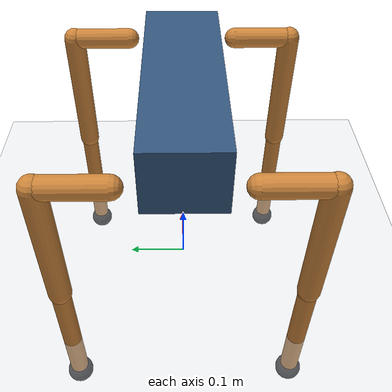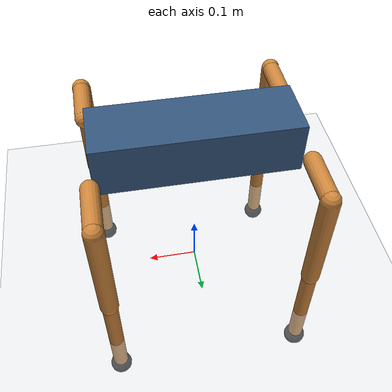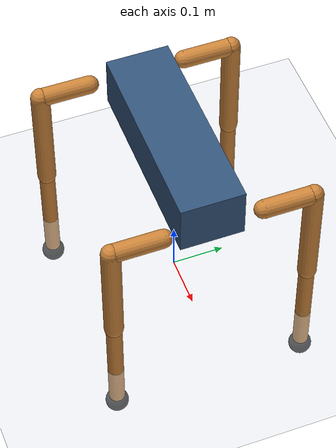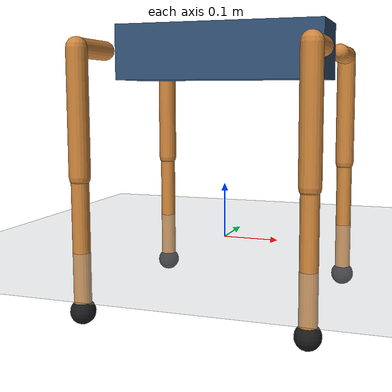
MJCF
<mujoco model="dev_quadruped">
  <compiler angle="radian" autolimits="true"/>
  <option timestep="0.002" gravity="0 0 -9.81" integrator="RK4" iterations="30"/>

  <visual>
    <headlight diffuse="0.7 0.7 0.7" ambient="0.25 0.25 0.25" specular="0.15 0.15 0.15"/>
    <rgba haze="0.15 0.2 0.25 1"/>
  </visual>

  <asset>
    <texture name="grid" type="2d" builtin="checker" width="256" height="256" rgb1="0.88 0.90 0.92" rgb2="0.76 0.79 0.83"/>
    <material name="floor" texture="grid" texrepeat="4 4" reflectance="0.05"/>
    <material name="body_mat" rgba="0.19 0.32 0.47 1"/>
    <material name="leg_mat" rgba="0.80 0.52 0.23 1"/>
    <material name="foot_mat" rgba="0.10 0.10 0.10 1"/>
  </asset>

  <default>
    <joint armature="0.01" damping="0.5" limited="true"/>
    <geom margin="0.002" condim="3" friction="1.1 0.05 0.02" solimp="0.9 0.95 0.001" solref="0.004 1"/>
    <motor ctrllimited="true" ctrlrange="-33 33"/>
  </default>

  <worldbody>
    <light pos="0 0 2.5" dir="0 0 -1"/>
    <geom name="floor" type="plane" size="4 4 0.1" material="floor"/>

    <body name="base" pos="0 0 0.34">
      <freejoint/>
      <inertial pos="0 0 0" mass="8.5" diaginertia="0.10 0.25 0.28"/>
      <geom name="body" type="box" size="0.19 0.06 0.05" material="body_mat"/>

      <body name="FR_hip_root" pos="0.1934 -0.092 0">
        <joint name="FR_hip_joint" axis="1 0 0" range="-0.7 0.7"/>
        <geom name="FR_hip_link" type="capsule" fromto="0 0 0 0 -0.0955 0" size="0.017" material="leg_mat"/>
        <body name="FR_thigh" pos="0 -0.0955 0">
          <joint name="FR_thigh_joint" axis="0 1 0" range="-1.0 2.2"/>
          <geom name="FR_thigh_link" type="capsule" fromto="0 0 0 0 0 -0.213" size="0.018" material="leg_mat"/>
          <body name="FR_calf" pos="0 0 -0.213">
            <joint name="FR_calf_joint" axis="0 1 0" range="-2.9 -0.05"/>
            <geom name="FR_calf_link" type="capsule" fromto="0 0 0 0 0 -0.23" size="0.015" material="leg_mat"/>
            <body name="FR_foot" pos="0 0 -0.23">
              <geom name="FR_foot_geom" type="sphere" size="0.022" material="foot_mat"/>
            </body>
          </body>
        </body>
      </body>

      <body name="FL_hip_root" pos="0.1934 0.092 0">
        <joint name="FL_hip_joint" axis="1 0 0" range="-0.7 0.7"/>
        <geom name="FL_hip_link" type="capsule" fromto="0 0 0 0 0.0955 0" size="0.017" material="leg_mat"/>
        <body name="FL_thigh" pos="0 0.0955 0">
          <joint name="FL_thigh_joint" axis="0 1 0" range="-1.0 2.2"/>
          <geom name="FL_thigh_link" type="capsule" fromto="0 0 0 0 0 -0.213" size="0.018" material="leg_mat"/>
          <body name="FL_calf" pos="0 0 -0.213">
            <joint name="FL_calf_joint" axis="0 1 0" range="-2.9 -0.05"/>
            <geom name="FL_calf_link" type="capsule" fromto="0 0 0 0 0 -0.23" size="0.015" material="leg_mat"/>
            <body name="FL_foot" pos="0 0 -0.23">
              <geom name="FL_foot_geom" type="sphere" size="0.022" material="foot_mat"/>
            </body>
          </body>
        </body>
      </body>

      <body name="RR_hip_root" pos="-0.1934 -0.092 0">
        <joint name="RR_hip_joint" axis="1 0 0" range="-0.7 0.7"/>
        <geom name="RR_hip_link" type="capsule" fromto="0 0 0 0 -0.0955 0" size="0.017" material="leg_mat"/>
        <body name="RR_thigh" pos="0 -0.0955 0">
          <joint name="RR_thigh_joint" axis="0 1 0" range="-1.0 2.2"/>
          <geom name="RR_thigh_link" type="capsule" fromto="0 0 0 0 0 -0.213" size="0.018" material="leg_mat"/>
          <body name="RR_calf" pos="0 0 -0.213">
            <joint name="RR_calf_joint" axis="0 1 0" range="-2.9 -0.05"/>
            <geom name="RR_calf_link" type="capsule" fromto="0 0 0 0 0 -0.23" size="0.015" material="leg_mat"/>
            <body name="RR_foot" pos="0 0 -0.23">
              <geom name="RR_foot_geom" type="sphere" size="0.022" material="foot_mat"/>
            </body>
          </body>
        </body>
      </body>

      <body name="RL_hip_root" pos="-0.1934 0.092 0">
        <joint name="RL_hip_joint" axis="1 0 0" range="-0.7 0.7"/>
        <geom name="RL_hip_link" type="capsule" fromto="0 0 0 0 0.0955 0" size="0.017" material="leg_mat"/>
        <body name="RL_thigh" pos="0 0.0955 0">
          <joint name="RL_thigh_joint" axis="0 1 0" range="-1.0 2.2"/>
          <geom name="RL_thigh_link" type="capsule" fromto="0 0 0 0 0 -0.213" size="0.018" material="leg_mat"/>
          <body name="RL_calf" pos="0 0 -0.213">
            <joint name="RL_calf_joint" axis="0 1 0" range="-2.9 -0.05"/>
            <geom name="RL_calf_link" type="capsule" fromto="0 0 0 0 0 -0.23" size="0.015" material="leg_mat"/>
            <body name="RL_foot" pos="0 0 -0.23">
              <geom name="RL_foot_geom" type="sphere" size="0.022" material="foot_mat"/>
            </body>
          </body>
        </body>
      </body>
    </body>
  </worldbody>

  <actuator>
    <motor name="FR_hip_motor" joint="FR_hip_joint"/>
    <motor name="FR_thigh_motor" joint="FR_thigh_joint"/>
    <motor name="FR_calf_motor" joint="FR_calf_joint"/>
    <motor name="FL_hip_motor" joint="FL_hip_joint"/>
    <motor name="FL_thigh_motor" joint="FL_thigh_joint"/>
    <motor name="FL_calf_motor" joint="FL_calf_joint"/>
    <motor name="RR_hip_motor" joint="RR_hip_joint"/>
    <motor name="RR_thigh_motor" joint="RR_thigh_joint"/>
    <motor name="RR_calf_motor" joint="RR_calf_joint"/>
    <motor name="RL_hip_motor" joint="RL_hip_joint"/>
    <motor name="RL_thigh_motor" joint="RL_thigh_joint"/>
    <motor name="RL_calf_motor" joint="RL_calf_joint"/>
  </actuator>
</mujoco>
